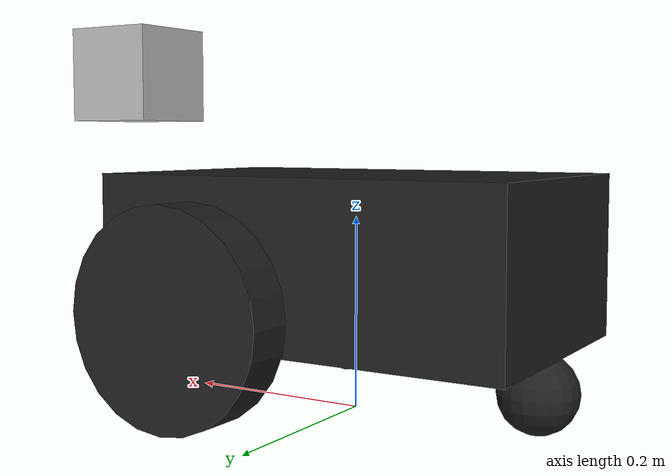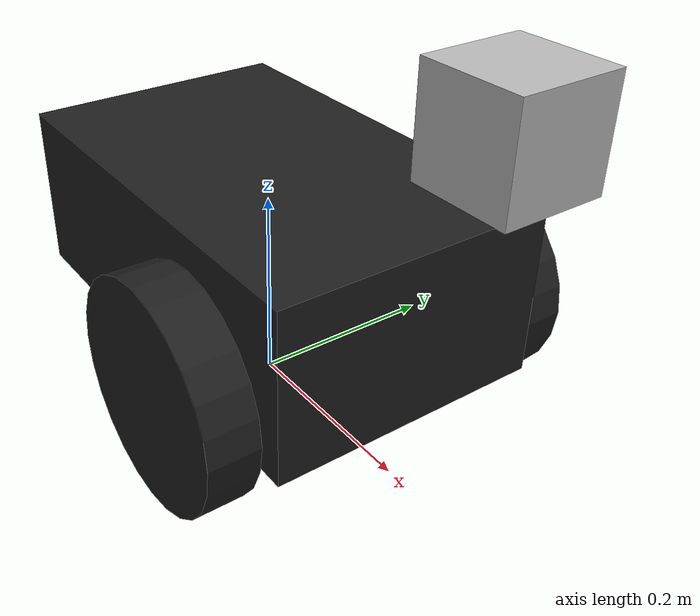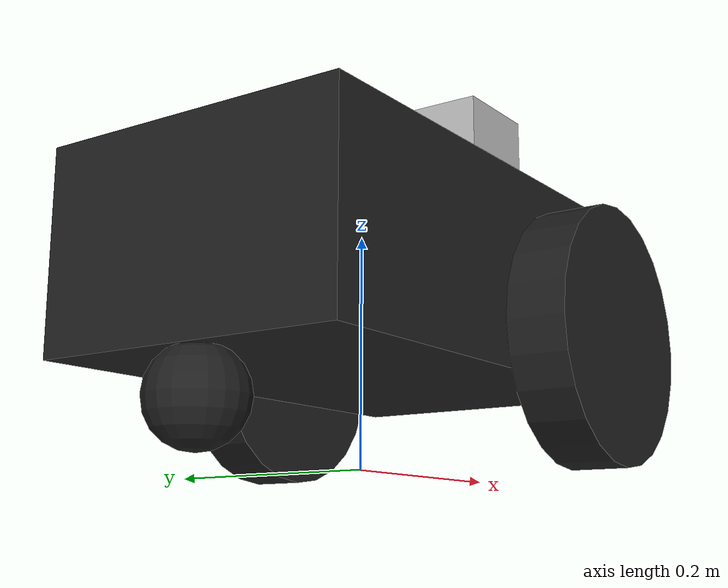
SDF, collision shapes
<?xml version="1.0"?>
<sdf version="1.4">
  <model name="pioneer2dx_camera_ros">
    <link name="chassis">
      <pose>0 0 0.16 0 0 0</pose>
      <inertial>
        <mass>5.67</mass>
        <inertia>
          <ixx>0.07</ixx>
          <iyy>0.08</iyy>
          <izz>0.10</izz>
          <ixy>0</ixy>
          <ixz>0</ixz>
          <iyz>0</iyz>
        </inertia>
      </inertial>
      <collision name="collision">
        <geometry>
          <box>
            <size>0.445 0.277 0.17</size>
          </box>
        </geometry>
      </collision>
      <collision name="castor_collision">
        <pose>-0.200 0 -0.12 0 0 0</pose>
        <geometry>
          <sphere>
            <radius>0.04</radius>
          </sphere>
        </geometry>
        <surface>
          <friction>
            <ode>
              <mu>0</mu>
              <mu2>0</mu2>
              <slip1>1.0</slip1>
              <slip2>1.0</slip2>
            </ode>
          </friction>
        </surface>
      </collision>
      <visual name="visual">
        <pose>0 0 0.04 0 0 0</pose>
        <geometry>
          <mesh>
            <uri>model://pioneer2dx/meshes/chassis.dae</uri>
          </mesh>
        </geometry>
      </visual>
      <visual name="castor_visual">
        <pose>-0.200 0 -0.12 0 0 0</pose>
        <geometry>
          <sphere>
            <radius>0.04</radius>
          </sphere>
        </geometry>
        <material>
          <script>
            <uri>file://media/materials/scripts/gazebo.material</uri>
            <name>Gazebo/FlatBlack</name>
          </script>
        </material>
      </visual>
    </link>
    <link name="right_wheel">
      <pose>0.1 -.17 0.11 0 1.5707 1.5707</pose>
      <inertial>
        <mass>1.5</mass>
        <inertia>
          <ixx>0.0051</ixx>
          <iyy>0.0051</iyy>
          <izz>0.0090</izz>
          <ixy>0</ixy>
          <ixz>0</ixz>
          <iyz>0</iyz>
        </inertia>
      </inertial>
      <collision name="collision">
        <geometry>
          <cylinder>
            <radius>0.11</radius>
            <length>0.05</length>
          </cylinder>
        </geometry>
        <surface>
          <friction>
            <ode>
              <mu>100000.0</mu>
              <mu2>100000.0</mu2>
              <slip1>0.0</slip1>
              <slip2>0.0</slip2>
            </ode>
          </friction>
        </surface>
      </collision>
      <visual name="visual">
        <geometry>
          <cylinder>
            <radius>0.11</radius>
            <length>0.05</length>
          </cylinder>
        </geometry>
        <material>
          <script>
            <uri>file://media/materials/scripts/gazebo.material</uri>
            <name>Gazebo/FlatBlack</name>
          </script>
        </material>
      </visual>
    </link>
    <link name="left_wheel">
      <pose>0.1 .17 0.11 0 1.5707 1.5707</pose>
      <inertial>
        <mass>1.5</mass>
        <inertia>
          <ixx>0.0051</ixx>
          <iyy>0.0051</iyy>
          <izz>0.0090</izz>
          <ixy>0</ixy>
          <ixz>0</ixz>
          <iyz>0</iyz>
        </inertia>
      </inertial>
      <collision name="collision">
        <geometry>
          <cylinder>
            <radius>0.11</radius>
            <length>0.05</length>
          </cylinder>
        </geometry>
        <surface>
          <friction>
            <ode>
              <mu>100000.0</mu>
              <mu2>100000.0</mu2>
              <slip1>0.0</slip1>
              <slip2>0.0</slip2>
            </ode>
          </friction>
        </surface>
      </collision>
      <visual name="visual">
        <geometry>
          <cylinder>
            <radius>0.11</radius>
            <length>0.05</length>
          </cylinder>
        </geometry>
        <material>
          <script>
            <uri>file://media/materials/scripts/gazebo.material</uri>
            <name>Gazebo/FlatBlack</name>
          </script>
        </material>
      </visual>
    </link>
    <joint type="revolute" name="left_wheel_hinge">
      <pose>0 0 -0.03 0 0 0</pose>
      <child>left_wheel</child>
      <parent>chassis</parent>
      <axis>
        <xyz>0 1 0</xyz>
      </axis>
    </joint>
    <joint type="revolute" name="right_wheel_hinge">
      <pose>0 0 0.03 0 0 0</pose>
      <child>right_wheel</child>
      <parent>chassis</parent>
      <axis>
        <xyz>0 1 0</xyz>
      </axis>
    </joint>
    <plugin name="differential_drive_controller" filename="libgazebo_ros_diff_drive.so">
      <alwaysOn>true</alwaysOn>
      <updateRate>100</updateRate>
      <leftJoint>left_wheel_hinge</leftJoint>
      <rightJoint>right_wheel_hinge</rightJoint>
      <wheelSeparation>0.39</wheelSeparation>
      <wheelDiameter>0.15</wheelDiameter>
      <torque>5</torque>
      <commandTopic>/cmd_vel</commandTopic>
      <odometryTopic>/odom</odometryTopic>
      <odometryFrame>/odom</odometryFrame>
      <robotBaseFrame>/base_link</robotBaseFrame>
    </plugin>
    <include>
      <uri>model://camera_ros</uri>
      <pose>0.2 0 0.30 0 0 0</pose>
    </include>
    <joint name="camera_joint" type="revolute">
      <child>camera_ros::link</child>
      <parent>chassis</parent>
      <axis>
        <xyz>0 0 1</xyz>
        <limit>
          <upper>0</upper>
          <lower>0</lower>
        </limit>
      </axis>
    </joint>
  </model>
</sdf>

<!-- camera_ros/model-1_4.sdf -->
<sdf version="1.4">
  <model name="camera_ros">
    <link name="link">
      <pose>0.05 0.05 0.05 0 0 0</pose>
      <inertial>
        <mass>0.1</mass>
      </inertial>
      <collision name="collision">
        <geometry>
          <box>
            <size>0.1 0.1 0.1</size>
          </box>
        </geometry>
      </collision>
      <visual name="visual">
        <geometry>
          <box>
            <size>0.1 0.1 0.1</size>
          </box>
        </geometry>
      </visual>
      <sensor name="camera" type="camera">
        <camera>
          <horizontal_fov>1.047</horizontal_fov>
          <image>
            <width>800</width>
            <height>600</height>
          </image>
          <clip>
            <near>0.1</near>
            <far>100</far>
          </clip>
        </camera>
        <plugin name="camera_controller" filename="libgazebo_ros_camera.so">
          <alwaysOn>true</alwaysOn>
          <updateRate>0.0</updateRate>
          <cameraName>/camera</cameraName>
          <imageTopicName>image_raw</imageTopicName>
          <cameraInfoTopicName>camera_info</cameraInfoTopicName>
          <frameName>camera_link</frameName>
          <hackBaseline>0.07</hackBaseline>
          <distortionK1>0.0</distortionK1>
          <distortionK2>0.0</distortionK2>
          <distortionK3>0.0</distortionK3>
          <distortionT1>0.0</distortionT1>
          <distortionT2>0.0</distortionT2>
        </plugin>
        <always_on>1</always_on>
        <update_rate>30</update_rate>
        <visualize>true</visualize>
      </sensor>
    </link>
  </model>
</sdf>
